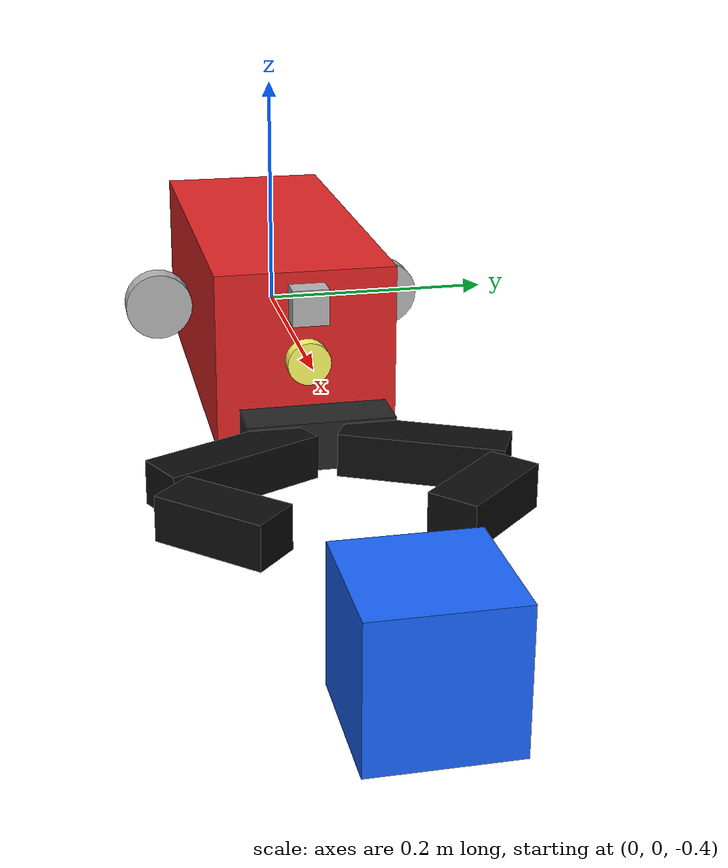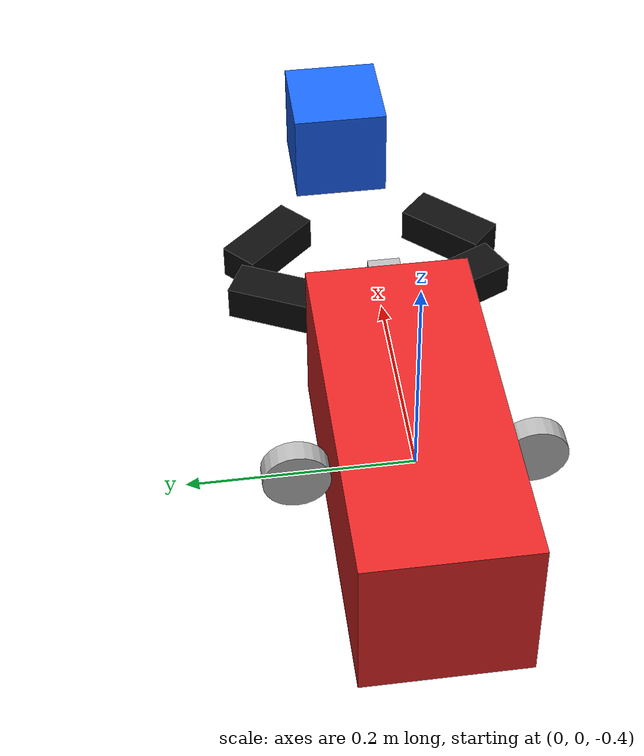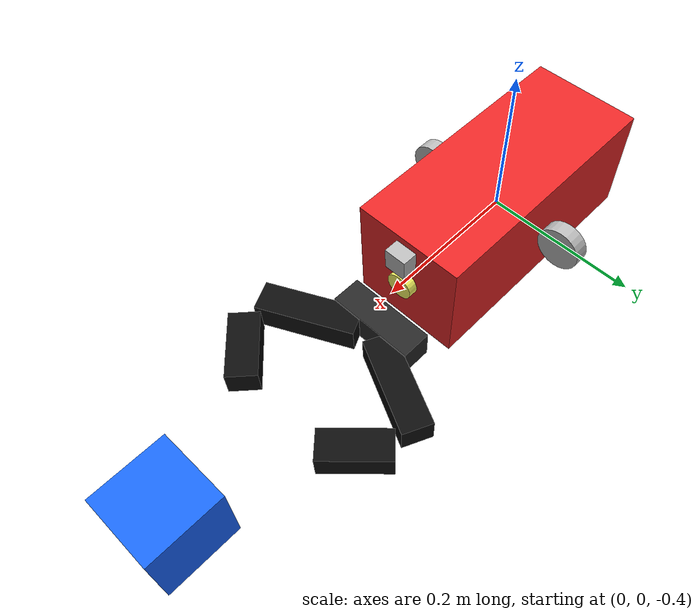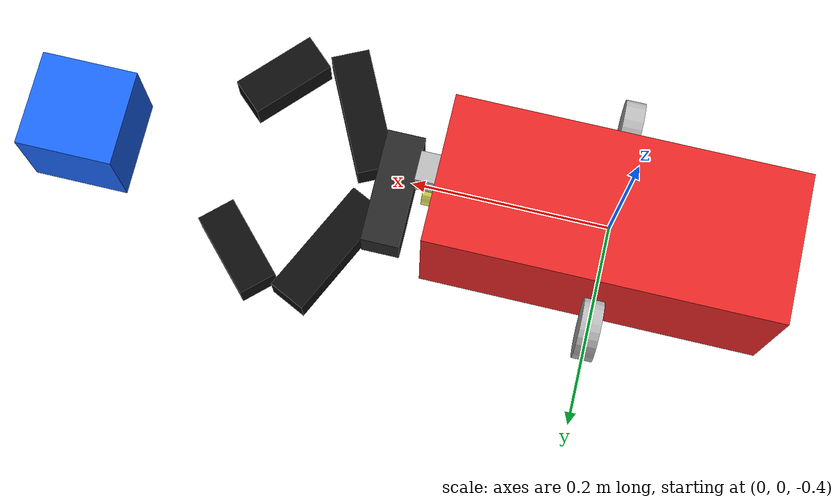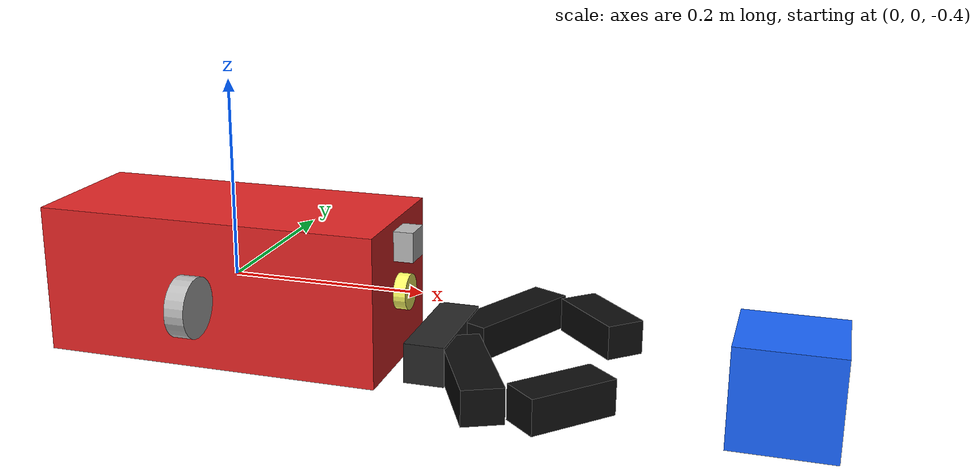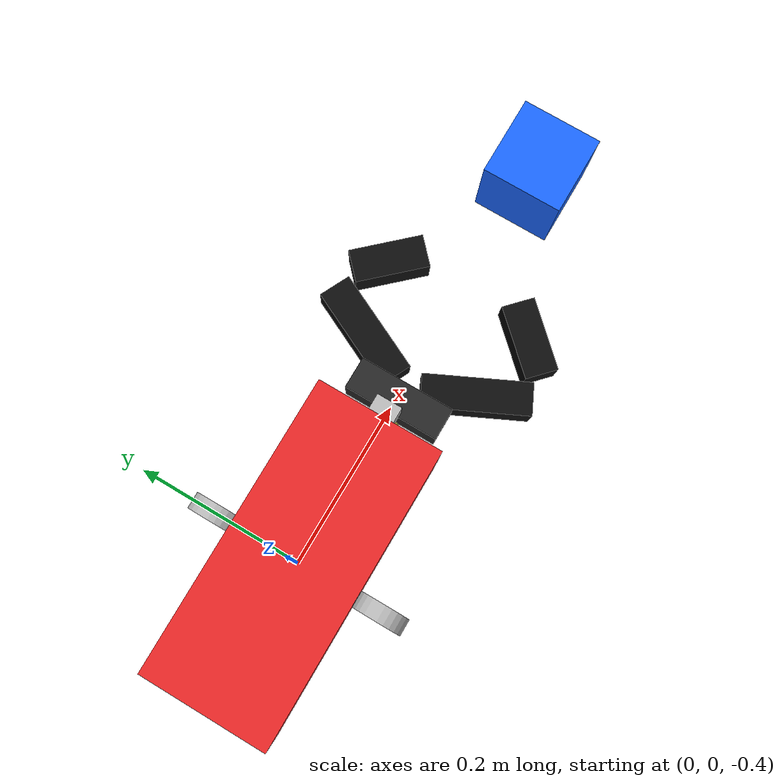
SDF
<sdf version="1.9">
 <world name="pool_world">
  <gravity>0 0 -9.8</gravity>
  <plugin filename="gz-sim-physics-system" name="gz::sim::systems::Physics"/>
  <plugin filename="gz-sim-scene-broadcaster-system" name="gz::sim::systems::SceneBroadcaster"/>
  <plugin filename="gz-sim-user-commands-system" name="gz::sim::systems::UserCommands"/>
  <plugin filename="gz-sim-buoyancy-system" name="gz::sim::systems::Buoyancy">
   <graded_buoyancy>
    <default_density>1000</default_density>
    <density_change><above_depth>0</above_depth><density>1</density></density_change>
   </graded_buoyancy>
   <enable>ROV</enable>
   <enable>grab_test_box</enable>
  </plugin>
  <plugin filename="gz-sim-sensors-system" name="gz::sim::systems::Sensors">
   <render_engine>ogre2</render_engine>
  </plugin>
  <light name="sun" type="directional">
   <pose>0 0 20 0 0 0</pose>
   <diffuse>0.9 0.9 0.9 1</diffuse>
   <specular>0.2 0.2 0.2 1</specular>
   <direction>-0.4 0.2 -1</direction>
  </light>
  <plugin filename="gz-sim-imu-system" name="gz::sim::systems::Imu"/>
  <include><uri>model://rov</uri></include>
  <include><uri>model://object</uri></include>
 </world>
</sdf>

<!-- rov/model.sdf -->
<sdf version="1.9">
  <model name="ROV">
    <pose>0 0 -0.4 0 0 0</pose>

    <!-- Main floating box -->
    <link name="base_link">
      <inertial>
        <pose>0 0 -0.07 0 0 0</pose>
        <mass>7.475</mass>
        <inertia>
          <ixx>0.02953125</ixx>
          <iyy>0.09515625</iyy>
          <izz>0.09515625</izz>
          <ixy>0</ixy>
          <ixz>0</ixz>
          <iyz>0</iyz>
        </inertia>
      </inertial>

      <collision name="base_collision">
        <geometry>
          <box>
            <size>0.35 0.15 0.15</size>
          </box>
        </geometry>
      </collision>

      <visual name="base_visual">
        <geometry>
          <box>
            <size>0.35 0.15 0.15</size>
          </box>
        </geometry>
        <material>
          <ambient>0.9 0.15 0.15 1</ambient>
          <diffuse>0.9 0.15 0.15 1</diffuse>
        </material>
      </visual>

      <!-- IMU sensor -->
      <sensor name="imu_sensor" type="imu">
        <always_on>true</always_on>
        <update_rate>50</update_rate>
        <visualize>true</visualize>
        <topic>/rov/imu</topic>
      </sensor>

      <!-- Scanning sonar ray source.
           Moved forward so it does not hit the ROV hull at ~0.17 m. -->
      <sensor name="scanning_sonar_internal_sensor" type="gpu_lidar">
        <pose>0.38 0 0.03 0 0 0</pose>

        <!-- Internal topic. Dashboard should NOT use this directly. -->
        <topic>/rov/scanning_sonar/internal_scan</topic>

        <update_rate>30</update_rate>
        <always_on>1</always_on>
        <visualize>false</visualize>

        <ray>
          <scan>
            <horizontal>
              <samples>720</samples>
              <resolution>1</resolution>
              <min_angle>-3.1416</min_angle>
              <max_angle>3.1416</max_angle>
            </horizontal>

            <vertical>
              <samples>1</samples>
              <resolution>1</resolution>
              <min_angle>0</min_angle>
              <max_angle>0</max_angle>
            </vertical>
          </scan>

          <range>
            <min>0.10</min>
            <max>8.0</max>
            <resolution>0.01</resolution>
          </range>
        </ray>
      </sensor>
    </link>

    <plugin
      filename="gz-sim-hydrodynamics-system"
      name="gz::sim::systems::Hydrodynamics">
      <link_name>base_link</link_name>
      <water_density>1000</water_density>

      <!-- Linear damping -->
      <xU>-6</xU>
      <yV>-12</yV>
      <zW>-14</zW>
      <kP>-0.4</kP>
      <mQ>-0.8</mQ>
      <nR>-0.8</nR>

      <!-- Quadratic damping -->
      <xUabsU>-12</xUabsU>
      <yVabsV>-20</yVabsV>
      <zWabsW>-24</zWabsW>
      <kPabsP>-0.02</kPabsP>
      <mQabsQ>-0.2</mQabsQ>
      <nRabsR>-0.2</nRabsR>
    </plugin>

    <link name="left_thrusters">
      <pose relative_to="base_link">0 0.105 0 0 1.57079632679 0</pose>
      <inertial>
        <mass>0.01</mass>
        <inertia>
          <ixx>1e-6</ixx>
          <iyy>1e-6</iyy>
          <izz>1e-6</izz>
          <ixy>0</ixy>
          <ixz>0</ixz>
          <iyz>0</iyz>
        </inertia>
      </inertial>

      <visual name="visual">
        <geometry>
          <cylinder>
            <radius>0.03</radius>
            <length>0.02</length>
          </cylinder>
        </geometry>
      </visual>
    </link>

    <joint name="left_thruster_joint" type="revolute">
      <parent>base_link</parent>
      <child>left_thrusters</child>
      <axis>
        <xyz>0 0 1</xyz>
        <limit>
          <lower>-1e16</lower>
          <upper>1e16</upper>
        </limit>
      </axis>
    </joint>

    <link name="right_thrusters">
      <pose relative_to="base_link">0 -0.105 0 0 1.57079632679 0</pose>
      <inertial>
        <mass>0.01</mass>
        <inertia>
          <ixx>1e-6</ixx>
          <iyy>1e-6</iyy>
          <izz>1e-6</izz>
          <ixy>0</ixy>
          <ixz>0</ixz>
          <iyz>0</iyz>
        </inertia>
      </inertial>

      <visual name="visual">
        <geometry>
          <cylinder>
            <radius>0.03</radius>
            <length>0.02</length>
          </cylinder>
        </geometry>
      </visual>
    </link>

    <joint name="right_thruster_joint" type="revolute">
      <parent>base_link</parent>
      <child>right_thrusters</child>
      <axis>
        <xyz>0 0 1</xyz>
        <limit>
          <lower>-1e16</lower>
          <upper>1e16</upper>
        </limit>
      </axis>
    </joint>

    <!-- ================= TUTORIAL-STYLE GRIPPER ================= -->

    <link name="gripper_palm">
      <pose relative_to="base_link">0.22 0 -0.05 0 0 0</pose>

      <inertial>
        <mass>0.192</mass>
        <inertia>
          <ixx>0.00005</ixx>
          <iyy>0.00005</iyy>
          <izz>0.00005</izz>
          <ixy>0</ixy>
          <ixz>0</ixz>
          <iyz>0</iyz>
        </inertia>
      </inertial>

      <collision name="collision">
        <geometry>
          <box>
            <size>0.04 0.12 0.04</size>
          </box>
        </geometry>
      </collision>

      <visual name="visual">
        <geometry>
          <box>
            <size>0.04 0.12 0.04</size>
          </box>
        </geometry>
        <material>
          <ambient>0.15 0.15 0.15 1</ambient>
          <diffuse>0.15 0.15 0.15 1</diffuse>
        </material>
      </visual>
    </link>

    <joint name="gripper_palm_joint" type="fixed">
      <parent>base_link</parent>
      <child>gripper_palm</child>
    </joint>

    <link name="left_gripper_finger">
      <pose relative_to="base_link">0.27 0.075 -0.05 0 0 -0.45</pose>

      <inertial>
        <mass>0.182</mass>
        <inertia>
          <ixx>0.00003</ixx>
          <iyy>0.00003</iyy>
          <izz>0.00003</izz>
          <ixy>0</ixy>
          <ixz>0</ixz>
          <iyz>0</iyz>
        </inertia>
      </inertial>

      <collision name="collision">
        <geometry>
          <box>
            <size>0.04 0.13 0.035</size>
          </box>
        </geometry>
        <surface>
          <friction>
            <ode>
              <mu>3.0</mu>
              <mu2>3.0</mu2>
            </ode>
          </friction>
          <contact>
            <ode>
              <kp>6000</kp>
              <kd>80</kd>
              <max_vel>0.05</max_vel>
              <min_depth>0.001</min_depth>
            </ode>
          </contact>
        </surface>
      </collision>

      <visual name="visual">
        <geometry>
          <box>
            <size>0.04 0.13 0.035</size>
          </box>
        </geometry>
        <material>
          <ambient>0.05 0.05 0.05 1</ambient>
          <diffuse>0.05 0.05 0.05 1</diffuse>
        </material>
      </visual>
    </link>

    <link name="left_gripper_tip">
      <pose relative_to="base_link">0.36 0.095 -0.05 0 0 0.75</pose>

      <inertial>
        <mass>0.126</mass>
        <inertia>
          <ixx>0.00002</ixx>
          <iyy>0.00002</iyy>
          <izz>0.00002</izz>
          <ixy>0</ixy>
          <ixz>0</ixz>
          <iyz>0</iyz>
        </inertia>
      </inertial>

      <collision name="collision">
        <geometry>
          <box>
            <size>0.04 0.09 0.035</size>
          </box>
        </geometry>
        <surface>
          <friction>
            <ode>
              <mu>3.0</mu>
              <mu2>3.0</mu2>
            </ode>
          </friction>
          <contact>
            <ode>
              <kp>6000</kp>
              <kd>80</kd>
              <max_vel>0.05</max_vel>
              <min_depth>0.001</min_depth>
            </ode>
          </contact>
        </surface>
      </collision>

      <visual name="visual">
        <geometry>
          <box>
            <size>0.04 0.09 0.035</size>
          </box>
        </geometry>
        <material>
          <ambient>0.05 0.05 0.05 1</ambient>
          <diffuse>0.05 0.05 0.05 1</diffuse>
        </material>
      </visual>
    </link>

    <link name="right_gripper_finger">
      <pose relative_to="base_link">0.27 -0.075 -0.05 0 0 0.45</pose>

      <inertial>
        <mass>0.182</mass>
        <inertia>
          <ixx>0.00003</ixx>
          <iyy>0.00003</iyy>
          <izz>0.00003</izz>
          <ixy>0</ixy>
          <ixz>0</ixz>
          <iyz>0</iyz>
        </inertia>
      </inertial>

      <collision name="collision">
        <geometry>
          <box>
            <size>0.04 0.13 0.035</size>
          </box>
        </geometry>
        <surface>
          <friction>
            <ode>
              <mu>3.0</mu>
              <mu2>3.0</mu2>
            </ode>
          </friction>
          <contact>
            <ode>
              <kp>6000</kp>
              <kd>80</kd>
              <max_vel>0.05</max_vel>
              <min_depth>0.001</min_depth>
            </ode>
          </contact>
        </surface>
      </collision>

      <visual name="visual">
        <geometry>
          <box>
            <size>0.04 0.13 0.035</size>
          </box>
        </geometry>
        <material>
          <ambient>0.05 0.05 0.05 1</ambient>
          <diffuse>0.05 0.05 0.05 1</diffuse>
        </material>
      </visual>
    </link>

    <link name="right_gripper_tip">
      <pose relative_to="base_link">0.36 -0.095 -0.05 0 0 -0.75</pose>

      <inertial>
        <mass>0.126</mass>
        <inertia>
          <ixx>0.00002</ixx>
          <iyy>0.00002</iyy>
          <izz>0.00002</izz>
          <ixy>0</ixy>
          <ixz>0</ixz>
          <iyz>0</iyz>
        </inertia>
      </inertial>

      <collision name="collision">
        <geometry>
          <box>
            <size>0.04 0.09 0.035</size>
          </box>
        </geometry>
        <surface>
          <friction>
            <ode>
              <mu>3.0</mu>
              <mu2>3.0</mu2>
            </ode>
          </friction>
          <contact>
            <ode>
              <kp>6000</kp>
              <kd>80</kd>
              <max_vel>0.05</max_vel>
              <min_depth>0.001</min_depth>
            </ode>
          </contact>
        </surface>
      </collision>

      <visual name="visual">
        <geometry>
          <box>
            <size>0.04 0.09 0.035</size>
          </box>
        </geometry>
        <material>
          <ambient>0.05 0.05 0.05 1</ambient>
          <diffuse>0.05 0.05 0.05 1</diffuse>
        </material>
      </visual>
    </link>

    <joint name="palm_left_finger_joint" type="revolute">
      <parent>gripper_palm</parent>
      <child>left_gripper_finger</child>
      <pose relative_to="base_link">0.235 0.055 -0.05 0 0 0</pose>
      <axis>
        <xyz>0 0 1</xyz>
        <limit>
          <lower>-0.7</lower>
          <upper>0.7</upper>
          <effort>1.5</effort>
          <velocity>0.6</velocity>
        </limit>
        <dynamics>
          <damping>0.8</damping>
          <friction>0.2</friction>
        </dynamics>
      </axis>
    </joint>

    <joint name="left_finger_tip_joint" type="revolute">
      <parent>left_gripper_finger</parent>
      <child>left_gripper_tip</child>
      <pose relative_to="base_link">0.32 0.10 -0.05 0 0 0</pose>
      <axis>
        <xyz>0 0 1</xyz>
        <limit>
          <lower>-0.7</lower>
          <upper>0.7</upper>
          <effort>1.0</effort>
          <velocity>0.6</velocity>
        </limit>
        <dynamics>
          <damping>0.8</damping>
          <friction>0.2</friction>
        </dynamics>
      </axis>
    </joint>

    <joint name="palm_right_finger_joint" type="revolute">
      <parent>gripper_palm</parent>
      <child>right_gripper_finger</child>
      <pose relative_to="base_link">0.235 -0.055 -0.05 0 0 0</pose>
      <axis>
        <xyz>0 0 1</xyz>
        <limit>
          <lower>-0.7</lower>
          <upper>0.7</upper>
          <effort>1.5</effort>
          <velocity>0.6</velocity>
        </limit>
        <dynamics>
          <damping>0.8</damping>
          <friction>0.2</friction>
        </dynamics>
      </axis>
    </joint>

    <joint name="right_finger_tip_joint" type="revolute">
      <parent>right_gripper_finger</parent>
      <child>right_gripper_tip</child>
      <pose relative_to="base_link">0.32 -0.10 -0.05 0 0 0</pose>
      <axis>
        <xyz>0 0 1</xyz>
        <limit>
          <lower>-0.7</lower>
          <upper>0.7</upper>
          <effort>1.0</effort>
          <velocity>0.6</velocity>
        </limit>
        <dynamics>
          <damping>0.8</damping>
          <friction>0.2</friction>
        </dynamics>
      </axis>
    </joint>

    <plugin filename="gz-sim-thruster-system"
            name="gz::sim::systems::Thruster">
      <namespace>rov</namespace>
      <joint_name>left_thruster_joint</joint_name>
      <thrust_coefficient>0.004422</thrust_coefficient>
      <fluid_density>1000</fluid_density>
      <propeller_diameter>0.1</propeller_diameter>
      <velocity_control>false</velocity_control>
      <max_thrust_cmd>30</max_thrust_cmd>
      <min_thrust_cmd>-30</min_thrust_cmd>
    </plugin>

    <plugin filename="gz-sim-thruster-system"
            name="gz::sim::systems::Thruster">
      <namespace>rov</namespace>
      <joint_name>right_thruster_joint</joint_name>
      <thrust_coefficient>0.004422</thrust_coefficient>
      <fluid_density>1000</fluid_density>
      <propeller_diameter>0.1</propeller_diameter>
      <velocity_control>false</velocity_control>
      <max_thrust_cmd>30</max_thrust_cmd>
      <min_thrust_cmd>-30</min_thrust_cmd>
    </plugin>

    <plugin filename="BallastTankPlugin"
            name="my_plugins::BallastTankPlugin">
      <link_name>base_link</link_name>
      <topic>/rov/ballast_cmd</topic>
      <max_weight>0.8</max_weight>
      <initial_weight>0.0</initial_weight>
      <fill_rate>0.4</fill_rate>
    </plugin>

    <plugin filename="libPressureSensorPlugin.so"
            name="my_plugins::PressureSensorPlugin">
      <parent_link_name>base_link</parent_link_name>

      <!-- Sensor port location on hull, relative to base_link -->
      <port_offset>0 0 -0.06</port_offset>

      <!-- Only matters if dynamic_pressure_coeff > 0 -->
      <port_axis_local>1 0 0</port_axis_local>

      <water_surface_z>0.0</water_surface_z>
      <atmospheric_pressure_pa>101325.0</atmospheric_pressure_pa>
      <water_density_kgpm3>997.0</water_density_kgpm3>
      <gravity_mps2>9.81</gravity_mps2>

      <update_rate_hz>30.0</update_rate_hz>

      <!-- realism -->
      <bias_pa>0.0</bias_pa>
      <noise_stddev_pa>120.0</noise_stddev_pa>
      <drift_stddev_pa_per_sqrt_s>3.0</drift_stddev_pa_per_sqrt_s>
      <tau_seconds>0.08</tau_seconds>
      <quantization_pa>10.0</quantization_pa>

      <!-- keep 0 for normal depth sensor -->
      <dynamic_pressure_coeff>0.0</dynamic_pressure_coeff>

      <clamp_above_surface>true</clamp_above_surface>

      <pressure_topic>/rov/pressure</pressure_topic>
      <depth_topic>/rov/depth/current</depth_topic>
    </plugin>

    <link name="camera_link">
      <pose relative_to="base_link">0.18 0 0.05 0 0 0</pose>

      <inertial>
        <mass>0.05</mass>
        <inertia>
          <ixx>0.00001</ixx>
          <iyy>0.00001</iyy>
          <izz>0.00001</izz>
          <ixy>0</ixy>
          <ixz>0</ixz>
          <iyz>0</iyz>
        </inertia>
      </inertial>

      <visual name="camera_visual">
        <geometry>
          <box>
            <size>0.03 0.03 0.03</size>
          </box>
        </geometry>
      </visual>

      <!-- Small visible LED body -->
      <visual name="front_led_visual">
        <pose>0 0 -0.05 0 1.5708 0</pose>
        <geometry>
          <cylinder>
            <radius>0.018</radius>
            <length>0.015</length>
          </cylinder>
        </geometry>
        <material>
          <ambient>1 1 0.4 1</ambient>
          <diffuse>1 1 0.4 1</diffuse>
          <emissive>1 1 0.3 1</emissive>
        </material>
      </visual>

      <!-- Actual attached spotlight -->
      <light name="front_led_light" type="spot">
        <pose>0 0 -0.05 0 0 0</pose>

        <intensity>0.0</intensity>
        <diffuse>1 1 0.8 1</diffuse>
        <specular>0.3 0.3 0.3 1</specular>
        <cast_shadows>true</cast_shadows>

        <attenuation>
          <range>8</range>
          <constant>0.5</constant>
          <linear>0.05</linear>
          <quadratic>0.01</quadratic>
        </attenuation>

        <!-- Forward direction of camera_link -->
        <direction>1 0 0</direction>

        <spot>
          <inner_angle>0.35</inner_angle>
          <outer_angle>0.8</outer_angle>
          <falloff>1.0</falloff>
        </spot>
      </light>

      <sensor name="front_camera" type="camera">
        <always_on>true</always_on>
        <update_rate>30</update_rate>
        <visualize>true</visualize>
        <topic>/sim/camera/image</topic>
        <camera>
          <horizontal_fov>1.5708</horizontal_fov>
          <image>
            <width>640</width>
            <height>480</height>
            <format>R8G8B8</format>
          </image>
          <clip>
            <near>0.05</near>
            <far>50.0</far>
          </clip>
        </camera>
      </sensor>
    </link>

    <joint name="camera_joint" type="fixed">
      <parent>base_link</parent>
      <child>camera_link</child>
    </joint>

    <plugin
      filename="libSpotLightPlugin.so"
      name="rov_gz_plugins::RovSpotLightPlugin">

      <light_name>front_led_light</light_name>
      <topic>/rov/light/cmd</topic>
      <on_intensity>1.0</on_intensity>
    </plugin>

    <plugin
      filename="libScanningSonarPlugin.so"
      name="rov_gz_plugins::ScanningSonarPlugin">

      <input_scan_topic>/rov/scanning_sonar/internal_scan</input_scan_topic>
      <topic>/rov/scanning_sonar/reading</topic>

      <!-- Radians: -57 deg to +57 deg -->
      <min_angle>-1</min_angle>
      <max_angle>1</max_angle>

      <!-- Messages per second -->
      <frequency>5</frequency>

      <!-- 0.2 rad per message -->
      <angle_step>0.2</angle_step>

      <min_distance>0.10</min_distance>
      <max_distance>8.0</max_distance>
      <resolution>0.01</resolution>

      <!-- Optional -->
      <noise_stddev>0.02</noise_stddev>
      <ping_pong>false</ping_pong>
    </plugin>

    <!-- ================= FORCE-BASED GRIPPER PLUGIN ================= -->

    <plugin
      filename="libRovGripperPlugin.so"
      name="rov_gz_plugins::RovGripperPlugin">

      <topic>/rov/gripper/open_cmd</topic>

      <left_joint>palm_left_finger_joint</left_joint>
      <right_joint>palm_right_finger_joint</right_joint>

      <main_force>5.0</main_force>

      <left_close_sign>-1</left_close_sign>
      <right_close_sign>1</right_close_sign>
    </plugin>
  </model>
</sdf>

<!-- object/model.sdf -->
<sdf version="1.9">
  <model name="grab_test_box">
    <!-- Put object in front of ROV gripper -->
    <pose>0.55 0 -0.45 0 0 0</pose>

    <static>false</static>

    <link name="box_link">
      <inertial>
        <!-- Neutral mass in water ≈ 0.216 kg -->
        <mass>1.1</mass>
        <inertia>
          <ixx>0.000132</ixx>
          <iyy>0.000132</iyy>
          <izz>0.000132</izz>
          <ixy>0</ixy>
          <ixz>0</ixz>
          <iyz>0</iyz>
        </inertia>
      </inertial>

      <collision name="box_collision">
        <geometry>
          <box>
            <size>0.1 0.1 0.1</size>
          </box>
        </geometry>

        <surface>
          <friction>
            <ode>
              <mu>2.0</mu>
              <mu2>2.0</mu2>
            </ode>
          </friction>

          <contact>
            <ode>
              <kp>100000</kp>
              <kd>10</kd>
            </ode>
          </contact>
        </surface>
      </collision>

      <visual name="box_visual">
        <geometry>
          <box>
            <size>0.1 0.1 0.1</size>
          </box>
        </geometry>
        <material>
          <ambient>0.1 0.4 1.0 1</ambient>
          <diffuse>0.1 0.4 1.0 1</diffuse>
        </material>
      </visual>
    </link>

    <!-- Hydrodynamic water damping for test object -->
    <plugin
      filename="gz-sim-hydrodynamics-system"
      name="gz::sim::systems::Hydrodynamics">

      <link_name>box_link</link_name>
      <water_density>1000</water_density>

      <!-- Linear damping -->
      <xU>-1.0</xU>
      <yV>-1.0</yV>
      <zW>-1.0</zW>
      <kP>-0.05</kP>
      <mQ>-0.05</mQ>
      <nR>-0.05</nR>

      <!-- Quadratic damping -->
      <xUabsU>-2.0</xUabsU>
      <yVabsV>-2.0</yVabsV>
      <zWabsW>-2.0</zWabsW>
      <kPabsP>-0.01</kPabsP>
      <mQabsQ>-0.01</mQabsQ>
      <nRabsR>-0.01</nRabsR>
    </plugin>
  </model>
</sdf>
